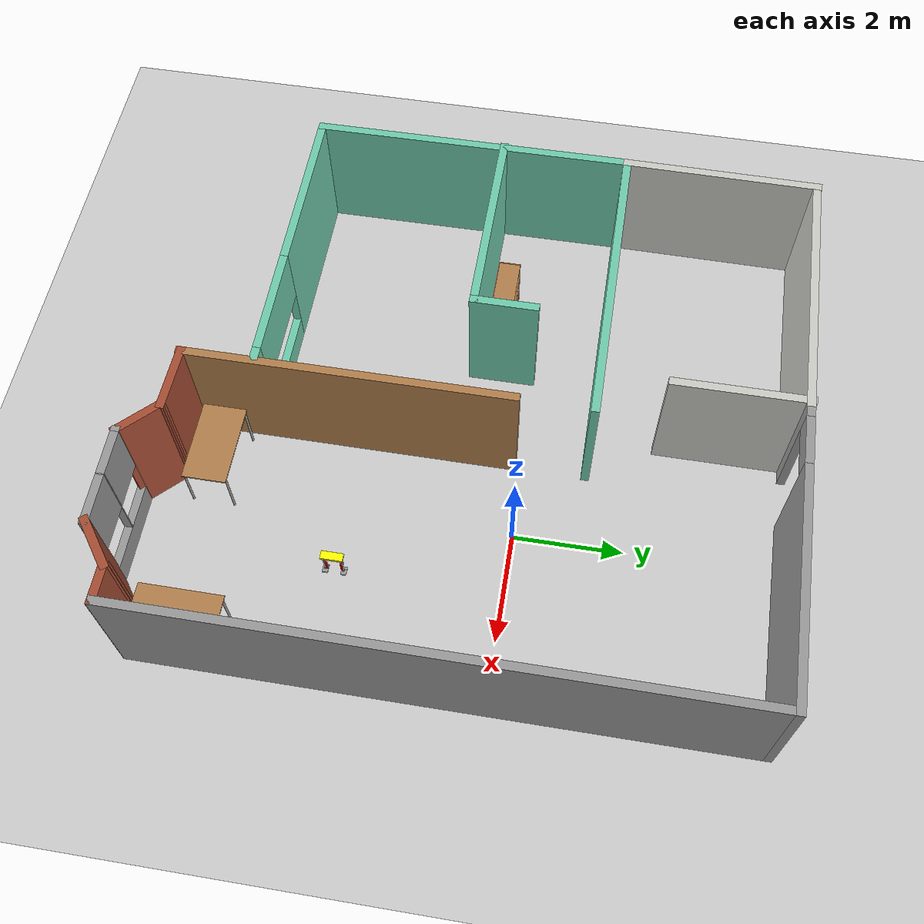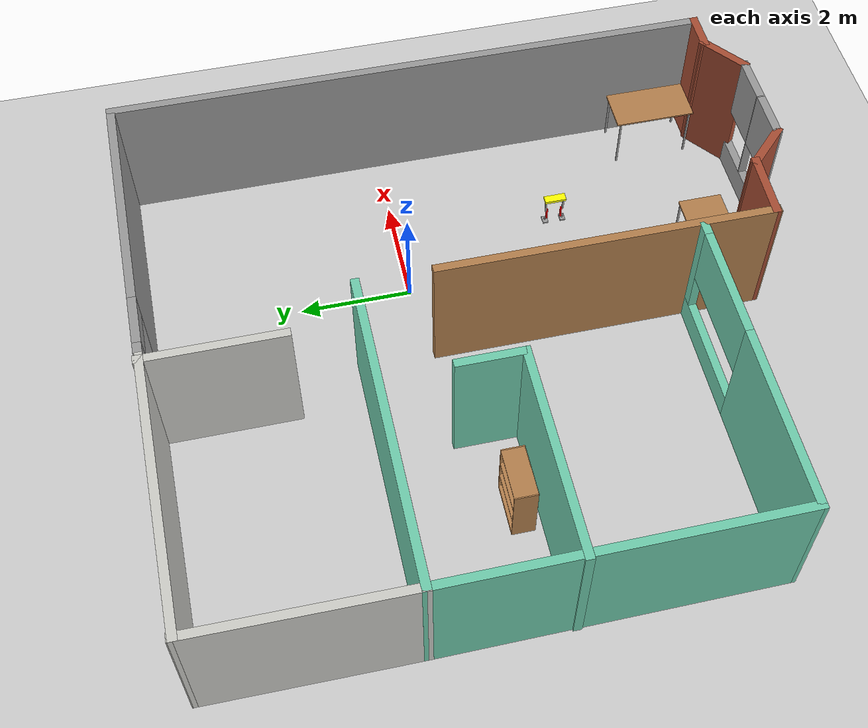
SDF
<sdf version="1.6">
 <world name="default">
  <model name="ground_plane">
   <static>1</static>
   <link name="link">
    <collision name="collision">
     <geometry><plane><normal>0 0 1</normal><size>100 100</size></plane></geometry>
     <surface><friction><ode><mu>100</mu><mu2>50</mu2></ode></friction></surface>
    </collision>
    <visual name="visual">
     <cast_shadows>0</cast_shadows>
     <geometry><plane><normal>0 0 1</normal><size>100 100</size></plane></geometry>
     <material>
      <script><uri>file://media/materials/scripts/gazebo.material</uri><name>Gazebo/Grey</name></script>
     </material>
    </visual>
   </link>
  </model>
  <model name="myWorld">
   <pose>-1.83586 -0.99456 0 0 -0 0</pose>
   <link name="Wall_1">
    <collision name="Wall_1_Collision">
     <geometry><box><size>6 0.15 2.5</size></box></geometry>
     <pose>0 0 1.25 0 -0 0</pose>
    </collision>
    <visual name="Wall_1_Visual">
     <pose>0 0 1.25 0 -0 0</pose>
     <geometry><box><size>6 0.15 2.5</size></box></geometry>
     <material>
      <script><uri>file://media/materials/scripts/gazebo.material</uri><name>Gazebo/Wood</name></script>
      <ambient>1 1 1 1</ambient>
     </material>
     <meta><layer>0</layer></meta>
    </visual>
    <pose>0.408173 -2.14572 0 0 0 -1.5708</pose>
   </link>
   <link name="Wall_18">
    <collision name="Wall_18_Collision">
     <geometry><box><size>10.9886 0.15 2.5</size></box></geometry>
     <pose>0 0 1.25 0 -0 0</pose>
    </collision>
    <visual name="Wall_18_Visual">
     <pose>0 0 1.25 0 -0 0</pose>
     <geometry><box><size>10.9886 0.15 2.5</size></box></geometry>
     <material>
      <script><uri>file://media/materials/scripts/gazebo.material</uri><name>Gazebo/Grey</name></script>
      <ambient>1 1 1 1</ambient>
     </material>
     <meta><layer>0</layer></meta>
    </visual>
    <pose>5.07141 0.284616 0 0 -0 1.5708</pose>
   </link>
   <link name="Wall_2">
    <collision name="Wall_2_Collision">
     <geometry><box><size>1.25 0.15 2.5</size></box></geometry>
     <pose>0 0 1.25 0 -0 0</pose>
    </collision>
    <visual name="Wall_2_Visual">
     <pose>0 0 1.25 0 -0 0</pose>
     <geometry><box><size>1.25 0.15 2.5</size></box></geometry>
     <material>
      <script><uri>file://media/materials/scripts/gazebo.material</uri><name>Gazebo/Bricks</name></script>
      <ambient>1 1 1 1</ambient>
     </material>
     <meta><layer>0</layer></meta>
    </visual>
    <pose>0.958173 -5.07072 0 0 0 -0.031789</pose>
   </link>
   <link name="Wall_20">
    <pose>2.39641 5.7039 0 0 -0 3.14159</pose>
    <visual name="Wall_20_Visual_0">
     <pose>-0.620935 0 1.25 0 -0 0</pose>
     <geometry><box><size>4.25813 0.15 2.5</size></box></geometry>
     <material>
      <script><uri>file://media/materials/scripts/gazebo.material</uri><name>Gazebo/Grey</name></script>
      <ambient>1 1 1 1</ambient>
     </material>
     <meta><layer>0</layer></meta>
    </visual>
    <collision name="Wall_20_Collision_0">
     <geometry><box><size>4.25813 0.15 2.5</size></box></geometry>
     <pose>-0.620935 0 1.25 0 -0 0</pose>
    </collision>
    <visual name="Wall_20_Visual_1">
     <pose>2.57906 0 1.25 0 -0 0</pose>
     <geometry><box><size>0.341869 0.15 2.5</size></box></geometry>
     <material>
      <script><uri>file://media/materials/scripts/gazebo.material</uri><name>Gazebo/Grey</name></script>
      <ambient>1 1 1 1</ambient>
     </material>
     <meta><layer>0</layer></meta>
    </visual>
    <collision name="Wall_20_Collision_1">
     <geometry><box><size>0.341869 0.15 2.5</size></box></geometry>
     <pose>2.57906 0 1.25 0 -0 0</pose>
    </collision>
    <visual name="Wall_20_Visual_2">
     <pose>1.95813 0 2.25 0 -0 0</pose>
     <geometry><box><size>0.9 0.15 0.5</size></box></geometry>
     <material>
      <script><uri>file://media/materials/scripts/gazebo.material</uri><name>Gazebo/Grey</name></script>
      <ambient>1 1 1 1</ambient>
     </material>
     <meta><layer>0</layer></meta>
    </visual>
    <collision name="Wall_20_Collision_2">
     <geometry><box><size>0.9 0.15 0.5</size></box></geometry>
     <pose>1.95813 0 2.25 0 -0 0</pose>
    </collision>
   </link>
   <link name="Wall_22">
    <collision name="Wall_22_Collision">
     <geometry><box><size>4.8978 0.15 2.5</size></box></geometry>
     <pose>0 0 1.25 0 -0 0</pose>
    </collision>
    <visual name="Wall_22_Visual">
     <pose>0 0 1.25 0 -0 0</pose>
     <geometry><box><size>4.8978 0.15 2.5</size></box></geometry>
     <material>
      <script><uri>file://media/materials/scripts/gazebo.material</uri><name>Gazebo/CeilingTiled</name></script>
      <ambient>1 1 1 1</ambient>
     </material>
     <meta><layer>0</layer></meta>
    </visual>
    <pose>-2.6523 5.68869 0 0 0 -3.13519</pose>
   </link>
   <link name="Wall_23">
    <collision name="Wall_23_Collision">
     <geometry><box><size>3.72179 0.15 2.5</size></box></geometry>
     <pose>0 0 1.25 0 -0 0</pose>
    </collision>
    <visual name="Wall_23_Visual">
     <pose>0 0 1.25 0 -0 0</pose>
     <geometry><box><size>3.72179 0.15 2.5</size></box></geometry>
     <material>
      <script><uri>file://media/materials/scripts/gazebo.material</uri><name>Gazebo/CeilingTiled</name></script>
      <ambient>1 1 1 1</ambient>
     </material>
     <meta><layer>0</layer></meta>
    </visual>
    <pose>-5.03927 3.90281 0 0 0 -1.57822</pose>
   </link>
   <link name="Wall_24">
    <collision name="Wall_24_Collision">
     <geometry><box><size>5.59881 0.15 2.5</size></box></geometry>
     <pose>0 0 1.25 0 -0 0</pose>
    </collision>
    <visual name="Wall_24_Visual">
     <pose>0 0 1.25 0 -0 0</pose>
     <geometry><box><size>5.59881 0.15 2.5</size></box></geometry>
     <material>
      <script><uri>file://media/materials/scripts/gazebo.material</uri><name>Gazebo/Grey</name></script>
      <ambient>0.435294 0.796078 0.67451 1</ambient>
     </material>
     <meta><layer>0</layer></meta>
    </visual>
    <pose>-2.31491 2.12703 0 0 -0 0.003711</pose>
   </link>
   <link name="Wall_26">
    <collision name="Wall_26_Collision">
     <geometry><box><size>2.5 0.15 2.5</size></box></geometry>
     <pose>0 0 1.25 0 -0 0</pose>
    </collision>
    <visual name="Wall_26_Visual">
     <pose>0 0 1.25 0 -0 0</pose>
     <geometry><box><size>2.5 0.15 2.5</size></box></geometry>
     <material>
      <script><uri>file://media/materials/scripts/gazebo.material</uri><name>Gazebo/CeilingTiled</name></script>
      <ambient>1 1 1 1</ambient>
     </material>
     <meta><layer>0</layer></meta>
    </visual>
    <pose>-0.330965 4.55103 0 0 -0 1.5708</pose>
   </link>
   <link name="Wall_28">
    <collision name="Wall_28_Collision">
     <geometry><box><size>6.04346 0.15 2.5</size></box></geometry>
     <pose>0 0 1.25 0 -0 0</pose>
    </collision>
    <visual name="Wall_28_Visual">
     <pose>0 0 1.25 0 -0 0</pose>
     <geometry><box><size>6.04346 0.15 2.5</size></box></geometry>
     <material>
      <script><uri>file://media/materials/scripts/gazebo.material</uri><name>Gazebo/Grey</name></script>
      <ambient>0.435294 0.796078 0.67451 1</ambient>
     </material>
     <meta><layer>0</layer></meta>
    </visual>
    <pose>-5.03927 -0.829799 0 0 0 -1.5663</pose>
   </link>
   <link name="Wall_29">
    <pose>-2.35101 -3.77652 0 0 -0 0</pose>
    <visual name="Wall_29_Visual_0">
     <pose>-1.12879 0 1.25 0 -0 0</pose>
     <geometry><box><size>3.24243 0.15 2.5</size></box></geometry>
     <material>
      <script><uri>file://media/materials/scripts/gazebo.material</uri><name>Gazebo/Grey</name></script>
      <ambient>0.435294 0.796078 0.67451 1</ambient>
     </material>
     <meta><layer>0</layer></meta>
    </visual>
    <collision name="Wall_29_Collision_0">
     <geometry><box><size>3.24243 0.15 2.5</size></box></geometry>
     <pose>-1.12879 0 1.25 0 -0 0</pose>
    </collision>
    <visual name="Wall_29_Visual_1">
     <pose>1.62121 0 0.25 0 -0 0</pose>
     <geometry><box><size>2.25757 0.15 0.5</size></box></geometry>
     <material>
      <script><uri>file://media/materials/scripts/gazebo.material</uri><name>Gazebo/Grey</name></script>
      <ambient>0.435294 0.796078 0.67451 1</ambient>
     </material>
     <meta><layer>0</layer></meta>
    </visual>
    <collision name="Wall_29_Collision_1">
     <geometry><box><size>2.25757 0.15 0.5</size></box></geometry>
     <pose>1.62121 0 0.25 0 -0 0</pose>
    </collision>
    <visual name="Wall_29_Visual_2">
     <pose>2.62121 0 1.5 0 -0 0</pose>
     <geometry><box><size>0.257574 0.15 2</size></box></geometry>
     <material>
      <script><uri>file://media/materials/scripts/gazebo.material</uri><name>Gazebo/Grey</name></script>
      <ambient>0.435294 0.796078 0.67451 1</ambient>
     </material>
     <meta><layer>0</layer></meta>
    </visual>
    <collision name="Wall_29_Collision_2">
     <geometry><box><size>0.257574 0.15 2</size></box></geometry>
     <pose>2.62121 0 1.5 0 -0 0</pose>
    </collision>
    <visual name="Wall_29_Visual_3">
     <pose>1.49243 0 1.9 0 -0 0</pose>
     <geometry><box><size>2 0.15 1.2</size></box></geometry>
     <material>
      <script><uri>file://media/materials/scripts/gazebo.material</uri><name>Gazebo/Grey</name></script>
      <ambient>0.435294 0.796078 0.67451 1</ambient>
     </material>
     <meta><layer>0</layer></meta>
    </visual>
    <collision name="Wall_29_Collision_3">
     <geometry><box><size>2 0.15 1.2</size></box></geometry>
     <pose>1.49243 0 1.9 0 -0 0</pose>
    </collision>
   </link>
   <link name="Wall_3">
    <collision name="Wall_3_Collision">
     <geometry><box><size>1 0.15 2.5</size></box></geometry>
     <pose>0 0 1.25 0 -0 0</pose>
    </collision>
    <visual name="Wall_3_Visual">
     <pose>0 0 1.25 0 -0 0</pose>
     <geometry><box><size>1 0.15 2.5</size></box></geometry>
     <material>
      <script><uri>file://media/materials/scripts/gazebo.material</uri><name>Gazebo/Bricks</name></script>
      <ambient>1 1 1 1</ambient>
     </material>
     <meta><layer>0</layer></meta>
    </visual>
    <pose>1.80298 -5.39445 0 0 0 -0.785398</pose>
   </link>
   <link name="Wall_31">
    <collision name="Wall_31_Collision">
     <geometry><box><size>3.75 0.15 2.5</size></box></geometry>
     <pose>0 0 1.25 0 -0 0</pose>
    </collision>
    <visual name="Wall_31_Visual">
     <pose>0 0 1.25 0 -0 0</pose>
     <geometry><box><size>3.75 0.15 2.5</size></box></geometry>
     <material>
      <script><uri>file://media/materials/scripts/gazebo.material</uri><name>Gazebo/Grey</name></script>
      <ambient>0.435294 0.796078 0.67451 1</ambient>
     </material>
     <meta><layer>0</layer></meta>
    </visual>
    <pose>-3.27141 -0.245758 0 0 -0 0</pose>
   </link>
   <link name="Wall_32">
    <collision name="Wall_32_Collision">
     <geometry><box><size>1.25 0.15 2.5</size></box></geometry>
     <pose>0 0 1.25 0 -0 0</pose>
    </collision>
    <visual name="Wall_32_Visual">
     <pose>0 0 1.25 0 -0 0</pose>
     <geometry><box><size>1.25 0.15 2.5</size></box></geometry>
     <material>
      <script><uri>file://media/materials/scripts/gazebo.material</uri><name>Gazebo/Grey</name></script>
      <ambient>0.435294 0.796078 0.67451 1</ambient>
     </material>
     <meta><layer>0</layer></meta>
    </visual>
    <pose>-1.47141 0.304242 0 0 -0 1.5708</pose>
   </link>
   <link name="Wall_4">
    <pose>2.9426 -5.68332 0 0 -0 0.00712</pose>
    <visual name="Wall_4_Visual_0">
     <pose>-0.858752 0 1.25 0 -0 0</pose>
     <geometry><box><size>0.099322 0.15 2.5</size></box></geometry>
     <material>
      <script><uri>file://media/materials/scripts/gazebo.material</uri><name>Gazebo/Grey</name></script>
      <ambient>1 1 1 1</ambient>
     </material>
     <meta><layer>0</layer></meta>
    </visual>
    <collision name="Wall_4_Collision_0">
     <geometry><box><size>0.099322 0.15 2.5</size></box></geometry>
     <pose>-0.858752 0 1.25 0 -0 0</pose>
    </collision>
    <visual name="Wall_4_Visual_1">
     <pose>0.049661 0 0.25 0 -0 0</pose>
     <geometry><box><size>1.7175 0.15 0.5</size></box></geometry>
     <material>
      <script><uri>file://media/materials/scripts/gazebo.material</uri><name>Gazebo/Grey</name></script>
      <ambient>1 1 1 1</ambient>
     </material>
     <meta><layer>0</layer></meta>
    </visual>
    <collision name="Wall_4_Collision_1">
     <geometry><box><size>1.7175 0.15 0.5</size></box></geometry>
     <pose>0.049661 0 0.25 0 -0 0</pose>
    </collision>
    <visual name="Wall_4_Visual_2">
     <pose>0.000934 0 1.5 0 -0 0</pose>
     <geometry><box><size>0.02005 0.15 2</size></box></geometry>
     <material>
      <script><uri>file://media/materials/scripts/gazebo.material</uri><name>Gazebo/Grey</name></script>
      <ambient>1 1 1 1</ambient>
     </material>
     <meta><layer>0</layer></meta>
    </visual>
    <collision name="Wall_4_Collision_2">
     <geometry><box><size>0.02005 0.15 2</size></box></geometry>
     <pose>0.000934 0 1.5 0 -0 0</pose>
    </collision>
    <visual name="Wall_4_Visual_3">
     <pose>0.859686 0 1.5 0 -0 0</pose>
     <geometry><box><size>0.097453 0.15 2</size></box></geometry>
     <material>
      <script><uri>file://media/materials/scripts/gazebo.material</uri><name>Gazebo/Grey</name></script>
      <ambient>1 1 1 1</ambient>
     </material>
     <meta><layer>0</layer></meta>
    </visual>
    <collision name="Wall_4_Collision_3">
     <geometry><box><size>0.097453 0.15 2</size></box></geometry>
     <pose>0.859686 0 1.5 0 -0 0</pose>
    </collision>
    <visual name="Wall_4_Visual_4">
     <pose>-0.409091 0 1.9 0 -0 0</pose>
     <geometry><box><size>0.8 0.15 1.2</size></box></geometry>
     <material>
      <script><uri>file://media/materials/scripts/gazebo.material</uri><name>Gazebo/Grey</name></script>
      <ambient>1 1 1 1</ambient>
     </material>
     <meta><layer>0</layer></meta>
    </visual>
    <collision name="Wall_4_Collision_4">
     <geometry><box><size>0.8 0.15 1.2</size></box></geometry>
     <pose>-0.409091 0 1.9 0 -0 0</pose>
    </collision>
    <visual name="Wall_4_Visual_5">
     <pose>0.41096 0 1.9 0 -0 0</pose>
     <geometry><box><size>0.8 0.15 1.2</size></box></geometry>
     <material>
      <script><uri>file://media/materials/scripts/gazebo.material</uri><name>Gazebo/Grey</name></script>
      <ambient>1 1 1 1</ambient>
     </material>
     <meta><layer>0</layer></meta>
    </visual>
    <collision name="Wall_4_Collision_5">
     <geometry><box><size>0.8 0.15 1.2</size></box></geometry>
     <pose>0.41096 0 1.9 0 -0 0</pose>
    </collision>
   </link>
   <link name="Wall_5">
    <collision name="Wall_5_Collision">
     <geometry><box><size>1.02513 0.15 2.5</size></box></geometry>
     <pose>0 0 1.25 0 -0 0</pose>
    </collision>
    <visual name="Wall_5_Visual">
     <pose>0 0 1.25 0 -0 0</pose>
     <geometry><box><size>1.02513 0.15 2.5</size></box></geometry>
     <material>
      <script><uri>file://media/materials/scripts/gazebo.material</uri><name>Gazebo/Bricks</name></script>
      <ambient>1 1 1 1</ambient>
     </material>
     <meta><layer>0</layer></meta>
    </visual>
    <pose>4.1237 -5.40602 0 0 -0 0.652393</pose>
   </link>
   <link name="Wall_6">
    <collision name="Wall_6_Collision">
     <geometry><box><size>0.75 0.15 2.5</size></box></geometry>
     <pose>0 0 1.25 0 -0 0</pose>
    </collision>
    <visual name="Wall_6_Visual">
     <pose>0 0 1.25 0 -0 0</pose>
     <geometry><box><size>0.75 0.15 2.5</size></box></geometry>
     <material>
      <script><uri>file://media/materials/scripts/gazebo.material</uri><name>Gazebo/Bricks</name></script>
      <ambient>1 1 1 1</ambient>
     </material>
     <meta><layer>0</layer></meta>
    </visual>
    <pose>4.7714 -5.14038 0 0 -0 0</pose>
   </link>
   <static>1</static>
  </model>
  <model name="table">
   <static>1</static>
   <link name="link">
    <collision name="surface">
     <pose>0 0 1 0 -0 0</pose>
     <geometry><box><size>1.5 0.8 0.03</size></box></geometry>
     <surface><friction><ode><mu>0.6</mu><mu2>0.6</mu2></ode></friction></surface>
    </collision>
    <visual name="visual1">
     <pose>0 0 1 0 -0 0</pose>
     <geometry><box><size>1.5 0.8 0.03</size></box></geometry>
     <material>
      <script><uri>file://media/materials/scripts/gazebo.material</uri><name>Gazebo/Wood</name></script>
     </material>
    </visual>
    <collision name="front_left_leg">
     <pose>0.68 0.38 0.5 0 -0 0</pose>
     <geometry><cylinder><radius>0.02</radius><length>1</length></cylinder></geometry>
    </collision>
    <visual name="front_left_leg">
     <pose>0.68 0.38 0.5 0 -0 0</pose>
     <geometry><cylinder><radius>0.02</radius><length>1</length></cylinder></geometry>
     <material>
      <script><uri>file://media/materials/scripts/gazebo.material</uri><name>Gazebo/Grey</name></script>
     </material>
    </visual>
    <collision name="front_right_leg">
     <pose>0.68 -0.38 0.5 0 -0 0</pose>
     <geometry><cylinder><radius>0.02</radius><length>1</length></cylinder></geometry>
    </collision>
    <visual name="front_right_leg">
     <pose>0.68 -0.38 0.5 0 -0 0</pose>
     <geometry><cylinder><radius>0.02</radius><length>1</length></cylinder></geometry>
     <material>
      <script><uri>file://media/materials/scripts/gazebo.material</uri><name>Gazebo/Grey</name></script>
     </material>
    </visual>
    <collision name="back_right_leg">
     <pose>-0.68 -0.38 0.5 0 -0 0</pose>
     <geometry><cylinder><radius>0.02</radius><length>1</length></cylinder></geometry>
    </collision>
    <visual name="back_right_leg">
     <pose>-0.68 -0.38 0.5 0 -0 0</pose>
     <geometry><cylinder><radius>0.02</radius><length>1</length></cylinder></geometry>
     <material>
      <script><uri>file://media/materials/scripts/gazebo.material</uri><name>Gazebo/Grey</name></script>
     </material>
    </visual>
    <collision name="back_left_leg">
     <pose>-0.68 0.38 0.5 0 -0 0</pose>
     <geometry><cylinder><radius>0.02</radius><length>1</length></cylinder></geometry>
    </collision>
    <visual name="back_left_leg">
     <pose>-0.68 0.38 0.5 0 -0 0</pose>
     <geometry><cylinder><radius>0.02</radius><length>1</length></cylinder></geometry>
     <material>
      <script><uri>file://media/materials/scripts/gazebo.material</uri><name>Gazebo/Grey</name></script>
     </material>
    </visual>
   </link>
   <pose>-0.515108 -5.46969 0 0 -0 0</pose>
  </model>
  <model name="table_0">
   <static>1</static>
   <link name="link">
    <collision name="surface">
     <pose>0 0 1 0 -0 0</pose>
     <geometry><box><size>1.5 0.8 0.03</size></box></geometry>
     <surface><friction><ode><mu>0.6</mu><mu2>0.6</mu2></ode></friction></surface>
    </collision>
    <visual name="visual1">
     <pose>0 0 1 0 -0 0</pose>
     <geometry><box><size>1.5 0.8 0.03</size></box></geometry>
     <material>
      <script><uri>file://media/materials/scripts/gazebo.material</uri><name>Gazebo/Wood</name></script>
     </material>
    </visual>
    <collision name="front_left_leg">
     <pose>0.68 0.38 0.5 0 -0 0</pose>
     <geometry><cylinder><radius>0.02</radius><length>1</length></cylinder></geometry>
    </collision>
    <visual name="front_left_leg">
     <pose>0.68 0.38 0.5 0 -0 0</pose>
     <geometry><cylinder><radius>0.02</radius><length>1</length></cylinder></geometry>
     <material>
      <script><uri>file://media/materials/scripts/gazebo.material</uri><name>Gazebo/Grey</name></script>
     </material>
    </visual>
    <collision name="front_right_leg">
     <pose>0.68 -0.38 0.5 0 -0 0</pose>
     <geometry><cylinder><radius>0.02</radius><length>1</length></cylinder></geometry>
    </collision>
    <visual name="front_right_leg">
     <pose>0.68 -0.38 0.5 0 -0 0</pose>
     <geometry><cylinder><radius>0.02</radius><length>1</length></cylinder></geometry>
     <material>
      <script><uri>file://media/materials/scripts/gazebo.material</uri><name>Gazebo/Grey</name></script>
     </material>
    </visual>
    <collision name="back_right_leg">
     <pose>-0.68 -0.38 0.5 0 -0 0</pose>
     <geometry><cylinder><radius>0.02</radius><length>1</length></cylinder></geometry>
    </collision>
    <visual name="back_right_leg">
     <pose>-0.68 -0.38 0.5 0 -0 0</pose>
     <geometry><cylinder><radius>0.02</radius><length>1</length></cylinder></geometry>
     <material>
      <script><uri>file://media/materials/scripts/gazebo.material</uri><name>Gazebo/Grey</name></script>
     </material>
    </visual>
    <collision name="back_left_leg">
     <pose>-0.68 0.38 0.5 0 -0 0</pose>
     <geometry><cylinder><radius>0.02</radius><length>1</length></cylinder></geometry>
    </collision>
    <visual name="back_left_leg">
     <pose>-0.68 0.38 0.5 0 -0 0</pose>
     <geometry><cylinder><radius>0.02</radius><length>1</length></cylinder></geometry>
     <material>
      <script><uri>file://media/materials/scripts/gazebo.material</uri><name>Gazebo/Grey</name></script>
     </material>
    </visual>
   </link>
   <pose>2.69112 -5.27728 0 0 -0 1.57</pose>
  </model>
  <model name="HumanoidRobot_0">
   <link name="link_1">
    <inertial>
     <mass>1</mass>
     <inertia>
      <ixx>0.166667</ixx>
      <ixy>0</ixy>
      <ixz>0</ixz>
      <iyy>0.166667</iyy>
      <iyz>0</iyz>
      <izz>0.166667</izz>
     </inertia>
    </inertial>
    <pose>0 0 0.585 0 -0 0</pose>
    <self_collide>1</self_collide>
    <visual name="ModelPreview_0::link_1::visual_2">
     <pose>0 -0.135 -0.055 0 -0 0</pose>
     <geometry><box><size>0.03 0.03 0.06</size></box></geometry>
     <material>
      <lighting>1</lighting>
      <script><uri>file://media/materials/scripts/gazebo.material</uri><name>Gazebo/Grey</name></script>
      <shader type="vertex"><normal_map>__default__</normal_map></shader>
      <ambient>0.3 0.3 0.3 1</ambient>
      <diffuse>0.7 0.7 0.7 1</diffuse>
      <specular>0.01 0.01 0.01 1</specular>
      <emissive>0 0 0 1</emissive>
     </material>
    </visual>
    <visual name="ModelPreview_0::link_1::visual_1">
     <pose>0 0.135 -0.055 0 -0 0</pose>
     <geometry><box><size>0.03 0.03 0.06</size></box></geometry>
     <material>
      <lighting>1</lighting>
      <script><uri>file://media/materials/scripts/gazebo.material</uri><name>Gazebo/Grey</name></script>
      <shader type="vertex"><normal_map>__default__</normal_map></shader>
      <ambient>0.3 0.3 0.3 1</ambient>
      <diffuse>0.7 0.7 0.7 1</diffuse>
      <specular>0.01 0.01 0.01 1</specular>
      <emissive>0 0 0 1</emissive>
     </material>
    </visual>
    <visual name="visual">
     <geometry><box><size>0.15 0.4 0.05</size></box></geometry>
     <material>
      <lighting>1</lighting>
      <script><uri>file://media/materials/scripts/gazebo.material</uri><name>Gazebo/Grey</name></script>
      <shader type="vertex"><normal_map>__default__</normal_map></shader>
      <ambient>1 1 0 1</ambient>
      <diffuse>0.7 0.7 0.7 1</diffuse>
      <specular>0.01 0.01 0.01 1</specular>
      <emissive>0 0 0 1</emissive>
     </material>
    </visual>
    <collision name="collision">
     <geometry><box><size>0.15 0.4 0.05</size></box></geometry>
     <surface>
      <friction>
       <ode><mu>1</mu><mu2>1</mu2><fdir1>0 0 0</fdir1><slip1>0</slip1><slip2>0</slip2></ode>
       <torsional>
        <coefficient>1</coefficient>
        <patch_radius>0</patch_radius>
        <surface_radius>0</surface_radius>
        <use_patch_radius>1</use_patch_radius>
        <ode><slip>0</slip></ode>
       </torsional>
      </friction>
      <bounce><restitution_coefficient>0</restitution_coefficient><threshold>1e+06</threshold></bounce>
      <contact>
       <collide_without_contact>0</collide_without_contact>
       <collide_without_contact_bitmask>1</collide_without_contact_bitmask>
       <collide_bitmask>1</collide_bitmask>
       <ode>
        <soft_cfm>0</soft_cfm>
        <soft_erp>0.2</soft_erp>
        <kp>1e+13</kp>
        <kd>1</kd>
        <max_vel>0.01</max_vel>
        <min_depth>0</min_depth>
       </ode>
       <bullet>
        <split_impulse>1</split_impulse>
        <split_impulse_penetration_threshold>-0.01</split_impulse_penetration_threshold>
        <soft_cfm>0</soft_cfm>
        <soft_erp>0.2</soft_erp>
        <kp>1e+13</kp>
        <kd>1</kd>
       </bullet>
      </contact>
     </surface>
    </collision>
    <collision name="collision_2">
     <pose>0 -0.135 -0.055 0 -0 0</pose>
     <geometry><box><size>0.03 0.03 0.06</size></box></geometry>
     <surface>
      <friction>
       <ode><mu>1</mu><mu2>1</mu2><fdir1>0 0 0</fdir1><slip1>0</slip1><slip2>0</slip2></ode>
       <torsional>
        <coefficient>1</coefficient>
        <patch_radius>0</patch_radius>
        <surface_radius>0</surface_radius>
        <use_patch_radius>1</use_patch_radius>
        <ode><slip>0</slip></ode>
       </torsional>
      </friction>
      <bounce><restitution_coefficient>0</restitution_coefficient><threshold>1e+06</threshold></bounce>
      <contact>
       <collide_without_contact>0</collide_without_contact>
       <collide_without_contact_bitmask>1</collide_without_contact_bitmask>
       <collide_bitmask>1</collide_bitmask>
       <ode>
        <soft_cfm>0</soft_cfm>
        <soft_erp>0.2</soft_erp>
        <kp>1e+13</kp>
        <kd>1</kd>
        <max_vel>0.01</max_vel>
        <min_depth>0</min_depth>
       </ode>
       <bullet>
        <split_impulse>1</split_impulse>
        <split_impulse_penetration_threshold>-0.01</split_impulse_penetration_threshold>
        <soft_cfm>0</soft_cfm>
        <soft_erp>0.2</soft_erp>
        <kp>1e+13</kp>
        <kd>1</kd>
       </bullet>
      </contact>
     </surface>
    </collision>
    <collision name="collision_1">
     <pose>0 0.135 -0.055 0 -0 0</pose>
     <geometry><box><size>0.03 0.03 0.06</size></box></geometry>
     <surface>
      <friction>
       <ode><mu>1</mu><mu2>1</mu2><fdir1>0 0 0</fdir1><slip1>0</slip1><slip2>0</slip2></ode>
       <torsional>
        <coefficient>1</coefficient>
        <patch_radius>0</patch_radius>
        <surface_radius>0</surface_radius>
        <use_patch_radius>1</use_patch_radius>
        <ode><slip>0</slip></ode>
       </torsional>
      </friction>
      <bounce><restitution_coefficient>0</restitution_coefficient><threshold>1e+06</threshold></bounce>
      <contact>
       <collide_without_contact>0</collide_without_contact>
       <collide_without_contact_bitmask>1</collide_without_contact_bitmask>
       <collide_bitmask>1</collide_bitmask>
       <ode>
        <soft_cfm>0</soft_cfm>
        <soft_erp>0.2</soft_erp>
        <kp>1e+13</kp>
        <kd>1</kd>
        <max_vel>0.01</max_vel>
        <min_depth>0</min_depth>
       </ode>
       <bullet>
        <split_impulse>1</split_impulse>
        <split_impulse_penetration_threshold>-0.01</split_impulse_penetration_threshold>
        <soft_cfm>0</soft_cfm>
        <soft_erp>0.2</soft_erp>
        <kp>1e+13</kp>
        <kd>1</kd>
       </bullet>
      </contact>
     </surface>
    </collision>
   </link>
   <link name="link_0">
    <inertial>
     <mass>1</mass>
     <inertia>
      <ixx>0.166667</ixx>
      <ixy>0</ixy>
      <ixz>0</ixz>
      <iyy>0.166667</iyy>
      <iyz>0</iyz>
      <izz>0.166667</izz>
     </inertia>
    </inertial>
    <pose>0 -0.165 0.015 0 -0 0</pose>
    <self_collide>1</self_collide>
    <visual name="ModelPreview_1::link_0::visual_1">
     <pose>0 0 0.045 0 -0 0</pose>
     <geometry><box><size>0.03 0.03 0.06</size></box></geometry>
     <material>
      <lighting>1</lighting>
      <script><uri>file://media/materials/scripts/gazebo.material</uri><name>Gazebo/Grey</name></script>
      <shader type="vertex"><normal_map>__default__</normal_map></shader>
      <ambient>0.3 0.3 0.3 1</ambient>
      <diffuse>0.7 0.7 0.7 1</diffuse>
      <specular>0.01 0.01 0.01 1</specular>
      <emissive>0 0 0 1</emissive>
     </material>
    </visual>
    <visual name="visual">
     <geometry><box><size>0.15 0.1 0.03</size></box></geometry>
     <material>
      <lighting>1</lighting>
      <script><uri>file://media/materials/scripts/gazebo.material</uri><name>Gazebo/Grey</name></script>
      <shader type="vertex"><normal_map>__default__</normal_map></shader>
      <ambient>0.3 0.3 0.3 1</ambient>
      <diffuse>0.7 0.7 0.7 1</diffuse>
      <specular>0.01 0.01 0.01 1</specular>
      <emissive>0 0 0 1</emissive>
     </material>
    </visual>
    <collision name="collision_1">
     <pose>0 0 0.045 0 -0 0</pose>
     <geometry><box><size>0.03 0.03 0.06</size></box></geometry>
     <surface>
      <friction>
       <ode><mu>1</mu><mu2>1</mu2><fdir1>0 0 0</fdir1><slip1>0</slip1><slip2>0</slip2></ode>
       <torsional>
        <coefficient>1</coefficient>
        <patch_radius>0</patch_radius>
        <surface_radius>0</surface_radius>
        <use_patch_radius>1</use_patch_radius>
        <ode><slip>0</slip></ode>
       </torsional>
      </friction>
      <bounce><restitution_coefficient>0</restitution_coefficient><threshold>1e+06</threshold></bounce>
      <contact>
       <collide_without_contact>0</collide_without_contact>
       <collide_without_contact_bitmask>1</collide_without_contact_bitmask>
       <collide_bitmask>1</collide_bitmask>
       <ode>
        <soft_cfm>0</soft_cfm>
        <soft_erp>0.2</soft_erp>
        <kp>1e+13</kp>
        <kd>1</kd>
        <max_vel>0.01</max_vel>
        <min_depth>0</min_depth>
       </ode>
       <bullet>
        <split_impulse>1</split_impulse>
        <split_impulse_penetration_threshold>-0.01</split_impulse_penetration_threshold>
        <soft_cfm>0</soft_cfm>
        <soft_erp>0.2</soft_erp>
        <kp>1e+13</kp>
        <kd>1</kd>
       </bullet>
      </contact>
     </surface>
    </collision>
    <collision name="collision">
     <geometry><box><size>0.15 0.1 0.03</size></box></geometry>
     <surface>
      <friction>
       <ode><mu>1</mu><mu2>1</mu2><fdir1>0 0 0</fdir1><slip1>0</slip1><slip2>0</slip2></ode>
       <torsional>
        <coefficient>1</coefficient>
        <patch_radius>0</patch_radius>
        <surface_radius>0</surface_radius>
        <use_patch_radius>1</use_patch_radius>
        <ode><slip>0</slip></ode>
       </torsional>
      </friction>
      <bounce><restitution_coefficient>0</restitution_coefficient><threshold>1e+06</threshold></bounce>
      <contact>
       <collide_without_contact>0</collide_without_contact>
       <collide_without_contact_bitmask>1</collide_without_contact_bitmask>
       <collide_bitmask>1</collide_bitmask>
       <ode>
        <soft_cfm>0</soft_cfm>
        <soft_erp>0.2</soft_erp>
        <kp>1e+13</kp>
        <kd>1</kd>
        <max_vel>0.01</max_vel>
        <min_depth>0</min_depth>
       </ode>
       <bullet>
        <split_impulse>1</split_impulse>
        <split_impulse_penetration_threshold>-0.01</split_impulse_penetration_threshold>
        <soft_cfm>0</soft_cfm>
        <soft_erp>0.2</soft_erp>
        <kp>1e+13</kp>
        <kd>1</kd>
       </bullet>
      </contact>
     </surface>
    </collision>
   </link>
   <link name="link_0_clone">
    <inertial>
     <mass>1</mass>
     <inertia>
      <ixx>0.166667</ixx>
      <ixy>0</ixy>
      <ixz>0</ixz>
      <iyy>0.166667</iyy>
      <iyz>0</iyz>
      <izz>0.166667</izz>
     </inertia>
    </inertial>
    <pose>0 0.165 0.015 0 -0 0</pose>
    <self_collide>1</self_collide>
    <visual name="visual">
     <geometry><box><size>0.15 0.1 0.03</size></box></geometry>
     <material>
      <lighting>1</lighting>
      <script><uri>file://media/materials/scripts/gazebo.material</uri><name>Gazebo/Grey</name></script>
      <shader type="vertex"><normal_map>__default__</normal_map></shader>
      <ambient>0.3 0.3 0.3 1</ambient>
      <diffuse>0.7 0.7 0.7 1</diffuse>
      <specular>0.01 0.01 0.01 1</specular>
      <emissive>0 0 0 1</emissive>
     </material>
    </visual>
    <visual name="visual_1">
     <pose>0 0 0.045 0 -0 0</pose>
     <geometry><box><size>0.03 0.03 0.06</size></box></geometry>
     <material>
      <lighting>1</lighting>
      <script><uri>file://media/materials/scripts/gazebo.material</uri><name>Gazebo/Grey</name></script>
      <shader type="vertex"><normal_map>__default__</normal_map></shader>
      <ambient>0.3 0.3 0.3 1</ambient>
      <diffuse>0.7 0.7 0.7 1</diffuse>
      <specular>0.01 0.01 0.01 1</specular>
      <emissive>0 0 0 1</emissive>
     </material>
    </visual>
    <collision name="collision">
     <geometry><box><size>0.15 0.1 0.03</size></box></geometry>
     <surface>
      <friction>
       <ode><mu>1</mu><mu2>1</mu2><fdir1>0 0 0</fdir1><slip1>0</slip1><slip2>0</slip2></ode>
       <torsional>
        <coefficient>1</coefficient>
        <patch_radius>0</patch_radius>
        <surface_radius>0</surface_radius>
        <use_patch_radius>1</use_patch_radius>
        <ode><slip>0</slip></ode>
       </torsional>
      </friction>
      <bounce><restitution_coefficient>0</restitution_coefficient><threshold>1e+06</threshold></bounce>
      <contact>
       <collide_without_contact>0</collide_without_contact>
       <collide_without_contact_bitmask>1</collide_without_contact_bitmask>
       <collide_bitmask>1</collide_bitmask>
       <ode>
        <soft_cfm>0</soft_cfm>
        <soft_erp>0.2</soft_erp>
        <kp>1e+13</kp>
        <kd>1</kd>
        <max_vel>0.01</max_vel>
        <min_depth>0</min_depth>
       </ode>
       <bullet>
        <split_impulse>1</split_impulse>
        <split_impulse_penetration_threshold>-0.01</split_impulse_penetration_threshold>
        <soft_cfm>0</soft_cfm>
        <soft_erp>0.2</soft_erp>
        <kp>1e+13</kp>
        <kd>1</kd>
       </bullet>
      </contact>
     </surface>
    </collision>
    <collision name="collision_1">
     <pose>0 0 0.045 0 -0 0</pose>
     <geometry><box><size>0.03 0.03 0.06</size></box></geometry>
     <surface>
      <friction>
       <ode><mu>1</mu><mu2>1</mu2><fdir1>0 0 0</fdir1><slip1>0</slip1><slip2>0</slip2></ode>
       <torsional>
        <coefficient>1</coefficient>
        <patch_radius>0</patch_radius>
        <surface_radius>0</surface_radius>
        <use_patch_radius>1</use_patch_radius>
        <ode><slip>0</slip></ode>
       </torsional>
      </friction>
      <bounce><restitution_coefficient>0</restitution_coefficient><threshold>1e+06</threshold></bounce>
      <contact>
       <collide_without_contact>0</collide_without_contact>
       <collide_without_contact_bitmask>1</collide_without_contact_bitmask>
       <collide_bitmask>1</collide_bitmask>
       <ode>
        <soft_cfm>0</soft_cfm>
        <soft_erp>0.2</soft_erp>
        <kp>1e+13</kp>
        <kd>1</kd>
        <max_vel>0.01</max_vel>
        <min_depth>0</min_depth>
       </ode>
       <bullet>
        <split_impulse>1</split_impulse>
        <split_impulse_penetration_threshold>-0.01</split_impulse_penetration_threshold>
        <soft_cfm>0</soft_cfm>
        <soft_erp>0.2</soft_erp>
        <kp>1e+13</kp>
        <kd>1</kd>
       </bullet>
      </contact>
     </surface>
    </collision>
   </link>
   <link name="link_2">
    <inertial>
     <mass>1</mass>
     <inertia>
      <ixx>0.166667</ixx>
      <ixy>0</ixy>
      <ixz>0</ixz>
      <iyy>0.166667</iyy>
      <iyz>0</iyz>
      <izz>0.166667</izz>
     </inertia>
    </inertial>
    <pose>0 -0.165 0.405 0 0.023326 0</pose>
    <self_collide>1</self_collide>
    <visual name="visual">
     <geometry><box><size>0.03 0.03 0.25</size></box></geometry>
     <material>
      <lighting>1</lighting>
      <script><uri>file://media/materials/scripts/gazebo.material</uri><name>Gazebo/Grey</name></script>
      <shader type="vertex"><normal_map>__default__</normal_map></shader>
      <ambient>0.3 0.3 0.3 1</ambient>
      <diffuse>0.7 0.7 0.7 1</diffuse>
      <specular>0.01 0.01 0.01 1</specular>
      <emissive>0 0 0 1</emissive>
     </material>
    </visual>
    <collision name="collision">
     <geometry><box><size>0.03 0.03 0.25</size></box></geometry>
     <surface>
      <friction>
       <ode><mu>1</mu><mu2>1</mu2><fdir1>0 0 0</fdir1><slip1>0</slip1><slip2>0</slip2></ode>
       <torsional>
        <coefficient>1</coefficient>
        <patch_radius>0</patch_radius>
        <surface_radius>0</surface_radius>
        <use_patch_radius>1</use_patch_radius>
        <ode><slip>0</slip></ode>
       </torsional>
      </friction>
      <bounce><restitution_coefficient>0</restitution_coefficient><threshold>1e+06</threshold></bounce>
      <contact>
       <collide_without_contact>0</collide_without_contact>
       <collide_without_contact_bitmask>1</collide_without_contact_bitmask>
       <collide_bitmask>1</collide_bitmask>
       <ode>
        <soft_cfm>0</soft_cfm>
        <soft_erp>0.2</soft_erp>
        <kp>1e+13</kp>
        <kd>1</kd>
        <max_vel>0.01</max_vel>
        <min_depth>0</min_depth>
       </ode>
       <bullet>
        <split_impulse>1</split_impulse>
        <split_impulse_penetration_threshold>-0.01</split_impulse_penetration_threshold>
        <soft_cfm>0</soft_cfm>
        <soft_erp>0.2</soft_erp>
        <kp>1e+13</kp>
        <kd>1</kd>
       </bullet>
      </contact>
     </surface>
    </collision>
   </link>
   <link name="link_2_clone">
    <inertial>
     <mass>1</mass>
     <inertia>
      <ixx>0.166667</ixx>
      <ixy>0</ixy>
      <ixz>0</ixz>
      <iyy>0.166667</iyy>
      <iyz>0</iyz>
      <izz>0.166667</izz>
     </inertia>
    </inertial>
    <pose>0 -0.135 0.185 0 0.023326 0</pose>
    <self_collide>1</self_collide>
    <visual name="visual">
     <geometry><box><size>0.03 0.03 0.25</size></box></geometry>
     <material>
      <lighting>1</lighting>
      <script><uri>file://media/materials/scripts/gazebo.material</uri><name>Gazebo/Grey</name></script>
      <shader type="vertex"><normal_map>__default__</normal_map></shader>
      <ambient>1 0 0 1</ambient>
      <diffuse>0.7 0.7 0.7 1</diffuse>
      <specular>0.01 0.01 0.01 1</specular>
      <emissive>0 0 0 1</emissive>
     </material>
    </visual>
    <collision name="collision">
     <geometry><box><size>0.03 0.03 0.25</size></box></geometry>
     <surface>
      <friction>
       <ode><mu>1</mu><mu2>1</mu2><fdir1>0 0 0</fdir1><slip1>0</slip1><slip2>0</slip2></ode>
       <torsional>
        <coefficient>1</coefficient>
        <patch_radius>0</patch_radius>
        <surface_radius>0</surface_radius>
        <use_patch_radius>1</use_patch_radius>
        <ode><slip>0</slip></ode>
       </torsional>
      </friction>
      <bounce><restitution_coefficient>0</restitution_coefficient><threshold>1e+06</threshold></bounce>
      <contact>
       <collide_without_contact>0</collide_without_contact>
       <collide_without_contact_bitmask>1</collide_without_contact_bitmask>
       <collide_bitmask>1</collide_bitmask>
       <ode>
        <soft_cfm>0</soft_cfm>
        <soft_erp>0.2</soft_erp>
        <kp>1e+13</kp>
        <kd>1</kd>
        <max_vel>0.01</max_vel>
        <min_depth>0</min_depth>
       </ode>
       <bullet>
        <split_impulse>1</split_impulse>
        <split_impulse_penetration_threshold>-0.01</split_impulse_penetration_threshold>
        <soft_cfm>0</soft_cfm>
        <soft_erp>0.2</soft_erp>
        <kp>1e+13</kp>
        <kd>1</kd>
       </bullet>
      </contact>
     </surface>
    </collision>
   </link>
   <link name="link_2_clone_0">
    <inertial>
     <mass>1</mass>
     <inertia>
      <ixx>0.166667</ixx>
      <ixy>0</ixy>
      <ixz>0</ixz>
      <iyy>0.166667</iyy>
      <iyz>0</iyz>
      <izz>0.166667</izz>
     </inertia>
    </inertial>
    <pose>0 0.165 0.405 0 0.023326 0</pose>
    <self_collide>1</self_collide>
    <visual name="visual">
     <geometry><box><size>0.03 0.03 0.25</size></box></geometry>
     <material>
      <lighting>1</lighting>
      <script><uri>file://media/materials/scripts/gazebo.material</uri><name>Gazebo/Grey</name></script>
      <shader type="vertex"><normal_map>__default__</normal_map></shader>
      <ambient>0.3 0.3 0.3 1</ambient>
      <diffuse>0.7 0.7 0.7 1</diffuse>
      <specular>0.01 0.01 0.01 1</specular>
      <emissive>0 0 0 1</emissive>
     </material>
    </visual>
    <collision name="collision">
     <geometry><box><size>0.03 0.03 0.25</size></box></geometry>
     <surface>
      <friction>
       <ode><mu>1</mu><mu2>1</mu2><fdir1>0 0 0</fdir1><slip1>0</slip1><slip2>0</slip2></ode>
       <torsional>
        <coefficient>1</coefficient>
        <patch_radius>0</patch_radius>
        <surface_radius>0</surface_radius>
        <use_patch_radius>1</use_patch_radius>
        <ode><slip>0</slip></ode>
       </torsional>
      </friction>
      <bounce><restitution_coefficient>0</restitution_coefficient><threshold>1e+06</threshold></bounce>
      <contact>
       <collide_without_contact>0</collide_without_contact>
       <collide_without_contact_bitmask>1</collide_without_contact_bitmask>
       <collide_bitmask>1</collide_bitmask>
       <ode>
        <soft_cfm>0</soft_cfm>
        <soft_erp>0.2</soft_erp>
        <kp>1e+13</kp>
        <kd>1</kd>
        <max_vel>0.01</max_vel>
        <min_depth>0</min_depth>
       </ode>
       <bullet>
        <split_impulse>1</split_impulse>
        <split_impulse_penetration_threshold>-0.01</split_impulse_penetration_threshold>
        <soft_cfm>0</soft_cfm>
        <soft_erp>0.2</soft_erp>
        <kp>1e+13</kp>
        <kd>1</kd>
       </bullet>
      </contact>
     </surface>
    </collision>
   </link>
   <link name="link_2_clone_1">
    <inertial>
     <mass>1</mass>
     <inertia>
      <ixx>0.166667</ixx>
      <ixy>0</ixy>
      <ixz>0</ixz>
      <iyy>0.166667</iyy>
      <iyz>0</iyz>
      <izz>0.166667</izz>
     </inertia>
    </inertial>
    <pose>0 0.135 0.185 0 0.023326 0</pose>
    <self_collide>1</self_collide>
    <visual name="visual">
     <geometry><box><size>0.03 0.03 0.25</size></box></geometry>
     <material>
      <lighting>1</lighting>
      <script><uri>file://media/materials/scripts/gazebo.material</uri><name>Gazebo/Grey</name></script>
      <shader type="vertex"><normal_map>__default__</normal_map></shader>
      <ambient>1 0 0 1</ambient>
      <diffuse>0.7 0.7 0.7 1</diffuse>
      <specular>0.01 0.01 0.01 1</specular>
      <emissive>0 0 0 1</emissive>
     </material>
    </visual>
    <collision name="collision">
     <geometry><box><size>0.03 0.03 0.25</size></box></geometry>
     <surface>
      <friction>
       <ode><mu>1</mu><mu2>1</mu2><fdir1>0 0 0</fdir1><slip1>0</slip1><slip2>0</slip2></ode>
       <torsional>
        <coefficient>1</coefficient>
        <patch_radius>0</patch_radius>
        <surface_radius>0</surface_radius>
        <use_patch_radius>1</use_patch_radius>
        <ode><slip>0</slip></ode>
       </torsional>
      </friction>
      <bounce><restitution_coefficient>0</restitution_coefficient><threshold>1e+06</threshold></bounce>
      <contact>
       <collide_without_contact>0</collide_without_contact>
       <collide_without_contact_bitmask>1</collide_without_contact_bitmask>
       <collide_bitmask>1</collide_bitmask>
       <ode>
        <soft_cfm>0</soft_cfm>
        <soft_erp>0.2</soft_erp>
        <kp>1e+13</kp>
        <kd>1</kd>
        <max_vel>0.01</max_vel>
        <min_depth>0</min_depth>
       </ode>
       <bullet>
        <split_impulse>1</split_impulse>
        <split_impulse_penetration_threshold>-0.01</split_impulse_penetration_threshold>
        <soft_cfm>0</soft_cfm>
        <soft_erp>0.2</soft_erp>
        <kp>1e+13</kp>
        <kd>1</kd>
       </bullet>
      </contact>
     </surface>
    </collision>
   </link>
   <joint name="link_1_JOINT_1" type="revolute">
    <parent>link_1</parent>
    <child>link_2</child>
    <pose>0 0 0.11 0 -0 0</pose>
    <axis>
     <xyz>0 1 0</xyz>
     <use_parent_model_frame>0</use_parent_model_frame>
     <limit>
      <lower>-1.79769e+308</lower>
      <upper>1.79769e+308</upper>
      <effort>-1</effort>
      <velocity>-1</velocity>
     </limit>
     <dynamics>
      <spring_reference>0</spring_reference>
      <spring_stiffness>0</spring_stiffness>
      <damping>0</damping>
      <friction>0</friction>
     </dynamics>
    </axis>
    <physics>
     <ode><limit><cfm>0</cfm><erp>0.2</erp></limit><suspension><cfm>0</cfm><erp>0.2</erp></suspension></ode>
    </physics>
   </joint>
   <joint name="link_1_JOINT_2" type="revolute">
    <parent>link_1</parent>
    <child>link_2_clone_0</child>
    <pose>0 0 0.11 0 -0 0</pose>
    <axis>
     <xyz>0 1 0</xyz>
     <use_parent_model_frame>0</use_parent_model_frame>
     <limit>
      <lower>-1.79769e+308</lower>
      <upper>1.79769e+308</upper>
      <effort>-1</effort>
      <velocity>-1</velocity>
     </limit>
     <dynamics>
      <spring_reference>0</spring_reference>
      <spring_stiffness>0</spring_stiffness>
      <damping>0</damping>
      <friction>0</friction>
     </dynamics>
    </axis>
    <physics>
     <ode><limit><cfm>0</cfm><erp>0.2</erp></limit><suspension><cfm>0</cfm><erp>0.2</erp></suspension></ode>
    </physics>
   </joint>
   <joint name="link_2_JOINT_0" type="revolute">
    <parent>link_2</parent>
    <child>link_2_clone</child>
    <pose>0 0 0.11 0 -0 0</pose>
    <axis>
     <xyz>0 1 0</xyz>
     <use_parent_model_frame>0</use_parent_model_frame>
     <limit>
      <lower>-1.79769e+308</lower>
      <upper>1.79769e+308</upper>
      <effort>-1</effort>
      <velocity>-1</velocity>
     </limit>
     <dynamics>
      <spring_reference>0</spring_reference>
      <spring_stiffness>0</spring_stiffness>
      <damping>0</damping>
      <friction>0</friction>
     </dynamics>
    </axis>
    <physics>
     <ode><limit><cfm>0</cfm><erp>0.2</erp></limit><suspension><cfm>0</cfm><erp>0.2</erp></suspension></ode>
    </physics>
   </joint>
   <joint name="link_2_clone_0_JOINT_3" type="revolute">
    <parent>link_2_clone_0</parent>
    <child>link_2_clone_1</child>
    <pose>0 0 0.11 0 -0 0</pose>
    <axis>
     <xyz>0 1 0</xyz>
     <use_parent_model_frame>0</use_parent_model_frame>
     <limit>
      <lower>-1.79769e+308</lower>
      <upper>1.79769e+308</upper>
      <effort>-1</effort>
      <velocity>-1</velocity>
     </limit>
     <dynamics>
      <spring_reference>0</spring_reference>
      <spring_stiffness>0</spring_stiffness>
      <damping>0</damping>
      <friction>0</friction>
     </dynamics>
    </axis>
    <physics>
     <ode><limit><cfm>0</cfm><erp>0.2</erp></limit><suspension><cfm>0</cfm><erp>0.2</erp></suspension></ode>
    </physics>
   </joint>
   <joint name="link_2_clone_1_JOINT_4" type="revolute">
    <parent>link_2_clone_1</parent>
    <child>link_0_clone</child>
    <pose>0 0 0.06 0 -0 0</pose>
    <axis>
     <xyz>0 1 0</xyz>
     <use_parent_model_frame>0</use_parent_model_frame>
     <limit>
      <lower>-1.79769e+308</lower>
      <upper>1.79769e+308</upper>
      <effort>-1</effort>
      <velocity>-1</velocity>
     </limit>
     <dynamics>
      <spring_reference>0</spring_reference>
      <spring_stiffness>0</spring_stiffness>
      <damping>0</damping>
      <friction>0</friction>
     </dynamics>
    </axis>
    <physics>
     <ode><limit><cfm>0</cfm><erp>0.2</erp></limit><suspension><cfm>0</cfm><erp>0.2</erp></suspension></ode>
    </physics>
   </joint>
   <joint name="link_2_clone_JOINT_1" type="revolute">
    <parent>link_2_clone</parent>
    <child>link_0</child>
    <pose>0 0 0.06 0 -0 0</pose>
    <axis>
     <xyz>0 1 0</xyz>
     <use_parent_model_frame>0</use_parent_model_frame>
     <limit>
      <lower>-1.79769e+308</lower>
      <upper>1.79769e+308</upper>
      <effort>-1</effort>
      <velocity>-1</velocity>
     </limit>
     <dynamics>
      <spring_reference>0</spring_reference>
      <spring_stiffness>0</spring_stiffness>
      <damping>0</damping>
      <friction>0</friction>
     </dynamics>
    </axis>
    <physics>
     <ode><limit><cfm>0</cfm><erp>0.2</erp></limit><suspension><cfm>0</cfm><erp>0.2</erp></suspension></ode>
    </physics>
   </joint>
   <static>0</static>
   <pose>1.13318 -3.00616 0 0 -0 0</pose>
  </model>
  <model name="bookshelf_clone_0">
   <static>1</static>
   <link name="link">
    <inertial><mass>1</mass></inertial>
    <collision name="back">
     <pose>0 0.005 0.6 0 -0 0</pose>
     <geometry><box><size>0.9 0.01 1.2</size></box></geometry>
    </collision>
    <visual name="visual1">
     <pose>0 0.005 0.6 0 -0 0</pose>
     <geometry><box><size>0.9 0.01 1.2</size></box></geometry>
     <material>
      <script><uri>file://media/materials/scripts/gazebo.material</uri><name>Gazebo/Wood</name></script>
     </material>
    </visual>
    <collision name="left_side">
     <pose>0.45 -0.195 0.6 0 -0 0</pose>
     <geometry><box><size>0.02 0.4 1.2</size></box></geometry>
    </collision>
    <visual name="visual2">
     <pose>0.45 -0.195 0.6 0 -0 0</pose>
     <geometry><box><size>0.02 0.4 1.2</size></box></geometry>
     <material>
      <script><uri>file://media/materials/scripts/gazebo.material</uri><name>Gazebo/Wood</name></script>
     </material>
    </visual>
    <collision name="right_side">
     <pose>-0.45 -0.195 0.6 0 -0 0</pose>
     <geometry><box><size>0.02 0.4 1.2</size></box></geometry>
    </collision>
    <visual name="visual3">
     <pose>-0.45 -0.195 0.6 0 -0 0</pose>
     <geometry><box><size>0.02 0.4 1.2</size></box></geometry>
     <material>
      <script><uri>file://media/materials/scripts/gazebo.material</uri><name>Gazebo/Wood</name></script>
     </material>
    </visual>
    <collision name="bottom">
     <pose>0 -0.195 0.03 0 -0 0</pose>
     <geometry><box><size>0.88 0.4 0.06</size></box></geometry>
    </collision>
    <visual name="visual4">
     <pose>0 -0.195 0.03 0 -0 0</pose>
     <geometry><box><size>0.88 0.4 0.06</size></box></geometry>
     <material>
      <script><uri>file://media/materials/scripts/gazebo.material</uri><name>Gazebo/Wood</name></script>
     </material>
    </visual>
    <collision name="top">
     <pose>0 -0.195 1.19 0 -0 0</pose>
     <geometry><box><size>0.88 0.4 0.02</size></box></geometry>
    </collision>
    <visual name="visual5">
     <pose>0 -0.195 1.19 0 -0 0</pose>
     <geometry><box><size>0.88 0.4 0.02</size></box></geometry>
     <material>
      <script><uri>file://media/materials/scripts/gazebo.material</uri><name>Gazebo/Wood</name></script>
     </material>
    </visual>
    <collision name="low_shelf">
     <pose>0 -0.195 0.43 0 -0 0</pose>
     <geometry><box><size>0.88 0.4 0.02</size></box></geometry>
    </collision>
    <visual name="visual6">
     <pose>0 -0.195 0.43 0 -0 0</pose>
     <geometry><box><size>0.88 0.4 0.02</size></box></geometry>
     <material>
      <script><uri>file://media/materials/scripts/gazebo.material</uri><name>Gazebo/Wood</name></script>
     </material>
    </visual>
    <collision name="high_shelf">
     <pose>0 -0.195 0.8 0 -0 0</pose>
     <geometry><box><size>0.88 0.4 0.02</size></box></geometry>
    </collision>
    <visual name="visual7">
     <pose>0 -0.195 0.8 0 -0 0</pose>
     <geometry><box><size>0.88 0.4 0.02</size></box></geometry>
     <material>
      <script><uri>file://media/materials/scripts/gazebo.material</uri><name>Gazebo/Wood</name></script>
     </material>
    </visual>
   </link>
   <pose>-4.69872 -1.02648 0 0 0 -3.14159</pose>
  </model>
 </world>
</sdf>
